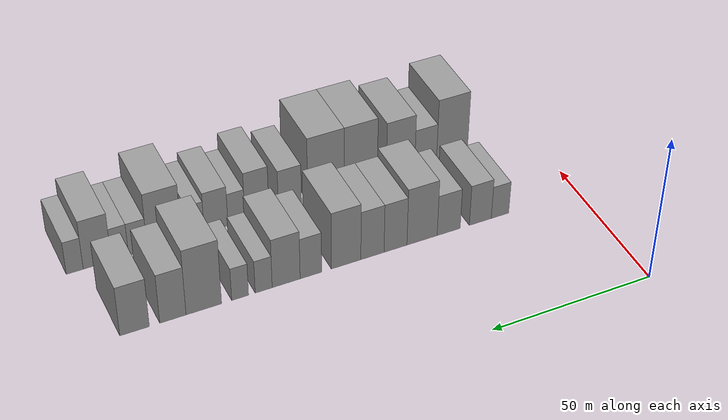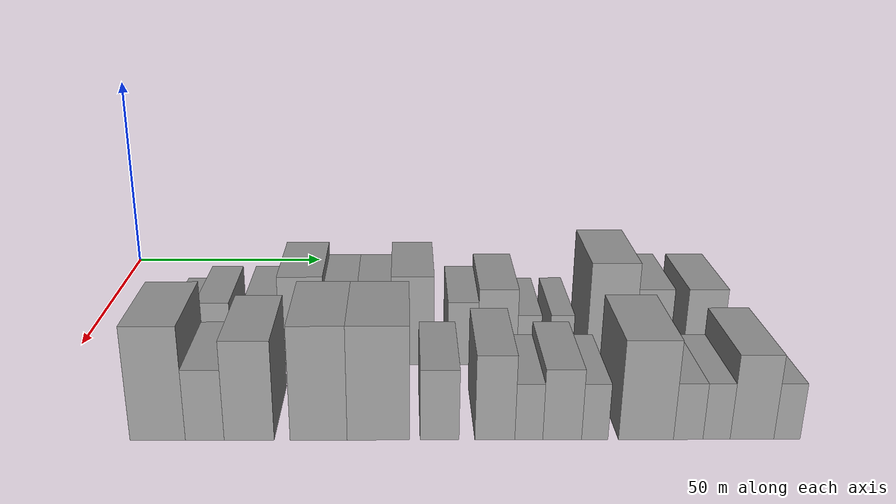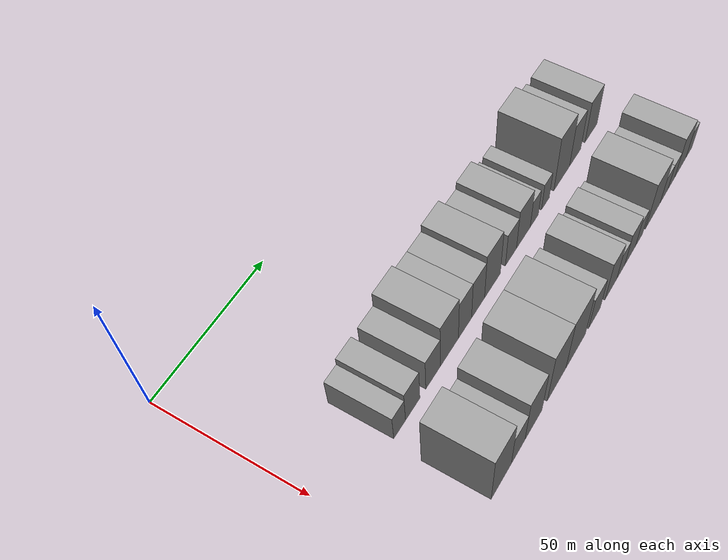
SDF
<sdf version="1.6">
 <world name="default">
  <model name="building_29">
   <static>1</static>
   <pose>50.0000 26.0019 0 0.000000 0.000000 0.000000</pose>
   <link name="link">
    <pose>0 0 6.00 0 0 0</pose>
    <collision name="collision"><geometry><box><size>20.0000 5.7797 12.0000</size></box></geometry></collision>
    <visual name="visual">
     <cast_shadows>0</cast_shadows>
     <geometry><box><size>20.0000 5.7797 12.0000</size></box></geometry>
     <material>
      <script>
       <uri>model://grey_wall/materials/scripts</uri>
       <uri>model://grey_wall/materials/textures</uri>
       <name>vrc/grey_wall</name>
      </script>
     </material>
    </visual>
   </link>
  </model>
  <model name="building_30">
   <static>1</static>
   <pose>50.0000 32.5020 0 0.000000 0.000000 0.000000</pose>
   <link name="link">
    <pose>0 0 7.50 0 0 0</pose>
    <collision name="collision"><geometry><box><size>20.0000 7.2206 15.0000</size></box></geometry></collision>
    <visual name="visual">
     <cast_shadows>0</cast_shadows>
     <geometry><box><size>20.0000 7.2206 15.0000</size></box></geometry>
     <material>
      <script>
       <uri>model://grey_wall/materials/scripts</uri>
       <uri>model://grey_wall/materials/textures</uri>
       <name>vrc/grey_wall</name>
      </script>
     </material>
    </visual>
   </link>
  </model>
  <model name="building_31">
   <static>1</static>
   <pose>50.0000 42.8494 0 0.000000 0.000000 0.000000</pose>
   <link name="link">
    <pose>0 0 7.50 0 0 0</pose>
    <collision name="collision"><geometry><box><size>20.0000 7.4743 15.0000</size></box></geometry></collision>
    <visual name="visual">
     <cast_shadows>0</cast_shadows>
     <geometry><box><size>20.0000 7.4743 15.0000</size></box></geometry>
     <material>
      <script>
       <uri>model://grey_wall/materials/scripts</uri>
       <uri>model://grey_wall/materials/textures</uri>
       <name>vrc/grey_wall</name>
      </script>
     </material>
    </visual>
   </link>
  </model>
  <model name="building_32">
   <static>1</static>
   <pose>50.0000 51.4524 0 0.000000 0.000000 0.000000</pose>
   <link name="link">
    <pose>0 0 10.50 0 0 0</pose>
    <collision name="collision"><geometry><box><size>20.0000 9.7316 21.0000</size></box></geometry></collision>
    <visual name="visual">
     <cast_shadows>0</cast_shadows>
     <geometry><box><size>20.0000 9.7316 21.0000</size></box></geometry>
     <material>
      <script>
       <uri>model://grey_wall/materials/scripts</uri>
       <uri>model://grey_wall/materials/textures</uri>
       <name>vrc/grey_wall</name>
      </script>
     </material>
    </visual>
   </link>
  </model>
  <model name="building_33">
   <static>1</static>
   <pose>50.0000 59.9531 0 0.000000 0.000000 0.000000</pose>
   <link name="link">
    <pose>0 0 9.00 0 0 0</pose>
    <collision name="collision"><geometry><box><size>20.0000 7.2698 18.0000</size></box></geometry></collision>
    <visual name="visual">
     <cast_shadows>0</cast_shadows>
     <geometry><box><size>20.0000 7.2698 18.0000</size></box></geometry>
     <material>
      <script>
       <uri>model://grey_wall/materials/scripts</uri>
       <uri>model://grey_wall/materials/textures</uri>
       <name>vrc/grey_wall</name>
      </script>
     </material>
    </visual>
   </link>
  </model>
  <model name="building_34">
   <static>1</static>
   <pose>50.0000 67.2421 0 0.000000 0.000000 0.000000</pose>
   <link name="link">
    <pose>0 0 9.00 0 0 0</pose>
    <collision name="collision"><geometry><box><size>20.0000 7.3082 18.0000</size></box></geometry></collision>
    <visual name="visual">
     <cast_shadows>0</cast_shadows>
     <geometry><box><size>20.0000 7.3082 18.0000</size></box></geometry>
     <material>
      <script>
       <uri>model://grey_wall/materials/scripts</uri>
       <uri>model://grey_wall/materials/textures</uri>
       <name>vrc/grey_wall</name>
      </script>
     </material>
    </visual>
   </link>
  </model>
  <model name="building_35">
   <static>1</static>
   <pose>50.0000 75.4865 0 0.000000 0.000000 0.000000</pose>
   <link name="link">
    <pose>0 0 10.50 0 0 0</pose>
    <collision name="collision"><geometry><box><size>20.0000 9.1805 21.0000</size></box></geometry></collision>
    <visual name="visual">
     <cast_shadows>0</cast_shadows>
     <geometry><box><size>20.0000 9.1805 21.0000</size></box></geometry>
     <material>
      <script>
       <uri>model://grey_wall/materials/scripts</uri>
       <uri>model://grey_wall/materials/textures</uri>
       <name>vrc/grey_wall</name>
      </script>
     </material>
    </visual>
   </link>
  </model>
  <model name="building_36">
   <static>1</static>
   <pose>50.0000 86.3893 0 0.000000 0.000000 0.000000</pose>
   <link name="link">
    <pose>0 0 7.50 0 0 0</pose>
    <collision name="collision"><geometry><box><size>20.0000 6.6253 15.0000</size></box></geometry></collision>
    <visual name="visual">
     <cast_shadows>0</cast_shadows>
     <geometry><box><size>20.0000 6.6253 15.0000</size></box></geometry>
     <material>
      <script>
       <uri>model://grey_wall/materials/scripts</uri>
       <uri>model://grey_wall/materials/textures</uri>
       <name>vrc/grey_wall</name>
      </script>
     </material>
    </visual>
   </link>
  </model>
  <model name="building_37">
   <static>1</static>
   <pose>50.0000 93.9520 0 0.000000 0.000000 0.000000</pose>
   <link name="link">
    <pose>0 0 9.00 0 0 0</pose>
    <collision name="collision"><geometry><box><size>20.0000 8.5001 18.0000</size></box></geometry></collision>
    <visual name="visual">
     <cast_shadows>0</cast_shadows>
     <geometry><box><size>20.0000 8.5001 18.0000</size></box></geometry>
     <material>
      <script>
       <uri>model://grey_wall/materials/scripts</uri>
       <uri>model://grey_wall/materials/textures</uri>
       <name>vrc/grey_wall</name>
      </script>
     </material>
    </visual>
   </link>
  </model>
  <model name="building_38">
   <static>1</static>
   <pose>50.0000 100.7623 0 0.000000 0.000000 0.000000</pose>
   <link name="link">
    <pose>0 0 6.00 0 0 0</pose>
    <collision name="collision"><geometry><box><size>20.0000 5.1205 12.0000</size></box></geometry></collision>
    <visual name="visual">
     <cast_shadows>0</cast_shadows>
     <geometry><box><size>20.0000 5.1205 12.0000</size></box></geometry>
     <material>
      <script>
       <uri>model://grey_wall/materials/scripts</uri>
       <uri>model://grey_wall/materials/textures</uri>
       <name>vrc/grey_wall</name>
      </script>
     </material>
    </visual>
   </link>
  </model>
  <model name="building_39">
   <static>1</static>
   <pose>50.0000 107.8391 0 0.000000 0.000000 0.000000</pose>
   <link name="link">
    <pose>0 0 6.00 0 0 0</pose>
    <collision name="collision"><geometry><box><size>20.0000 5.0329 12.0000</size></box></geometry></collision>
    <visual name="visual">
     <cast_shadows>0</cast_shadows>
     <geometry><box><size>20.0000 5.0329 12.0000</size></box></geometry>
     <material>
      <script>
       <uri>model://grey_wall/materials/scripts</uri>
       <uri>model://grey_wall/materials/textures</uri>
       <name>vrc/grey_wall</name>
      </script>
     </material>
    </visual>
   </link>
  </model>
  <model name="building_40">
   <static>1</static>
   <pose>50.0000 118.5804 0 0.000000 0.000000 0.000000</pose>
   <link name="link">
    <pose>0 0 12.00 0 0 0</pose>
    <collision name="collision"><geometry><box><size>20.0000 10.4498 24.0000</size></box></geometry></collision>
    <visual name="visual">
     <cast_shadows>0</cast_shadows>
     <geometry><box><size>20.0000 10.4498 24.0000</size></box></geometry>
     <material>
      <script>
       <uri>model://grey_wall/materials/scripts</uri>
       <uri>model://grey_wall/materials/textures</uri>
       <name>vrc/grey_wall</name>
      </script>
     </material>
    </visual>
   </link>
  </model>
  <model name="building_41">
   <static>1</static>
   <pose>50.0000 127.6384 0 0.000000 0.000000 0.000000</pose>
   <link name="link">
    <pose>0 0 9.00 0 0 0</pose>
    <collision name="collision"><geometry><box><size>20.0000 7.6661 18.0000</size></box></geometry></collision>
    <visual name="visual">
     <cast_shadows>0</cast_shadows>
     <geometry><box><size>20.0000 7.6661 18.0000</size></box></geometry>
     <material>
      <script>
       <uri>model://grey_wall/materials/scripts</uri>
       <uri>model://grey_wall/materials/textures</uri>
       <name>vrc/grey_wall</name>
      </script>
     </material>
    </visual>
   </link>
  </model>
  <model name="building_42">
   <static>1</static>
   <pose>50.0000 138.7081 0 0.000000 0.000000 0.000000</pose>
   <link name="link">
    <pose>0 0 9.00 0 0 0</pose>
    <collision name="collision"><geometry><box><size>20.0000 8.4734 18.0000</size></box></geometry></collision>
    <visual name="visual">
     <cast_shadows>0</cast_shadows>
     <geometry><box><size>20.0000 8.4734 18.0000</size></box></geometry>
     <material>
      <script>
       <uri>model://grey_wall/materials/scripts</uri>
       <uri>model://grey_wall/materials/textures</uri>
       <name>vrc/grey_wall</name>
      </script>
     </material>
    </visual>
   </link>
  </model>
  <model name="building_88">
   <static>1</static>
   <pose>79.0000 26.8853 0 0.000000 0.000000 0.000000</pose>
   <link name="link">
    <pose>0 0 12.00 0 0 0</pose>
    <collision name="collision"><geometry><box><size>20.0000 10.5078 24.0000</size></box></geometry></collision>
    <visual name="visual">
     <cast_shadows>0</cast_shadows>
     <geometry><box><size>20.0000 10.5078 24.0000</size></box></geometry>
     <material>
      <script>
       <uri>model://grey_wall/materials/scripts</uri>
       <uri>model://grey_wall/materials/textures</uri>
       <name>vrc/grey_wall</name>
      </script>
     </material>
    </visual>
   </link>
  </model>
  <model name="building_89">
   <static>1</static>
   <pose>79.0000 35.8158 0 0.000000 0.000000 0.000000</pose>
   <link name="link">
    <pose>0 0 7.50 0 0 0</pose>
    <collision name="collision"><geometry><box><size>20.0000 7.3532 15.0000</size></box></geometry></collision>
    <visual name="visual">
     <cast_shadows>0</cast_shadows>
     <geometry><box><size>20.0000 7.3532 15.0000</size></box></geometry>
     <material>
      <script>
       <uri>model://grey_wall/materials/scripts</uri>
       <uri>model://grey_wall/materials/textures</uri>
       <name>vrc/grey_wall</name>
      </script>
     </material>
    </visual>
   </link>
  </model>
  <model name="building_90">
   <static>1</static>
   <pose>79.0000 44.2381 0 0.000000 0.000000 0.000000</pose>
   <link name="link">
    <pose>0 0 10.50 0 0 0</pose>
    <collision name="collision"><geometry><box><size>20.0000 9.4914 21.0000</size></box></geometry></collision>
    <visual name="visual">
     <cast_shadows>0</cast_shadows>
     <geometry><box><size>20.0000 9.4914 21.0000</size></box></geometry>
     <material>
      <script>
       <uri>model://grey_wall/materials/scripts</uri>
       <uri>model://grey_wall/materials/textures</uri>
       <name>vrc/grey_wall</name>
      </script>
     </material>
    </visual>
   </link>
  </model>
  <model name="building_91">
   <static>1</static>
   <pose>79.0000 57.4024 0 0.000000 0.000000 0.000000</pose>
   <link name="link">
    <pose>0 0 12.00 0 0 0</pose>
    <collision name="collision"><geometry><box><size>20.0000 10.8370 24.0000</size></box></geometry></collision>
    <visual name="visual">
     <cast_shadows>0</cast_shadows>
     <geometry><box><size>20.0000 10.8370 24.0000</size></box></geometry>
     <material>
      <script>
       <uri>model://grey_wall/materials/scripts</uri>
       <uri>model://grey_wall/materials/textures</uri>
       <name>vrc/grey_wall</name>
      </script>
     </material>
    </visual>
   </link>
  </model>
  <model name="building_92">
   <static>1</static>
   <pose>79.0000 68.7419 0 0.000000 0.000000 0.000000</pose>
   <link name="link">
    <pose>0 0 12.00 0 0 0</pose>
    <collision name="collision"><geometry><box><size>20.0000 11.8421 24.0000</size></box></geometry></collision>
    <visual name="visual">
     <cast_shadows>0</cast_shadows>
     <geometry><box><size>20.0000 11.8421 24.0000</size></box></geometry>
     <material>
      <script>
       <uri>model://grey_wall/materials/scripts</uri>
       <uri>model://grey_wall/materials/textures</uri>
       <name>vrc/grey_wall</name>
      </script>
     </material>
    </visual>
   </link>
  </model>
  <model name="building_93">
   <static>1</static>
   <pose>79.0000 80.3644 0 0.000000 0.000000 0.000000</pose>
   <link name="link">
    <pose>0 0 7.50 0 0 0</pose>
    <collision name="collision"><geometry><box><size>20.0000 7.4029 15.0000</size></box></geometry></collision>
    <visual name="visual">
     <cast_shadows>0</cast_shadows>
     <geometry><box><size>20.0000 7.4029 15.0000</size></box></geometry>
     <material>
      <script>
       <uri>model://grey_wall/materials/scripts</uri>
       <uri>model://grey_wall/materials/textures</uri>
       <name>vrc/grey_wall</name>
      </script>
     </material>
    </visual>
   </link>
  </model>
  <model name="building_94">
   <static>1</static>
   <pose>79.0000 90.8599 0 0.000000 0.000000 0.000000</pose>
   <link name="link">
    <pose>0 0 9.00 0 0 0</pose>
    <collision name="collision"><geometry><box><size>20.0000 7.5880 18.0000</size></box></geometry></collision>
    <visual name="visual">
     <cast_shadows>0</cast_shadows>
     <geometry><box><size>20.0000 7.5880 18.0000</size></box></geometry>
     <material>
      <script>
       <uri>model://grey_wall/materials/scripts</uri>
       <uri>model://grey_wall/materials/textures</uri>
       <name>vrc/grey_wall</name>
      </script>
     </material>
    </visual>
   </link>
  </model>
  <model name="building_95">
   <static>1</static>
   <pose>79.0000 97.3081 0 0.000000 0.000000 0.000000</pose>
   <link name="link">
    <pose>0 0 6.00 0 0 0</pose>
    <collision name="collision"><geometry><box><size>20.0000 5.3083 12.0000</size></box></geometry></collision>
    <visual name="visual">
     <cast_shadows>0</cast_shadows>
     <geometry><box><size>20.0000 5.3083 12.0000</size></box></geometry>
     <material>
      <script>
       <uri>model://grey_wall/materials/scripts</uri>
       <uri>model://grey_wall/materials/textures</uri>
       <name>vrc/grey_wall</name>
      </script>
     </material>
    </visual>
   </link>
  </model>
  <model name="building_96">
   <static>1</static>
   <pose>79.0000 103.6469 0 0.000000 0.000000 0.000000</pose>
   <link name="link">
    <pose>0 0 7.50 0 0 0</pose>
    <collision name="collision"><geometry><box><size>20.0000 7.3695 15.0000</size></box></geometry></collision>
    <visual name="visual">
     <cast_shadows>0</cast_shadows>
     <geometry><box><size>20.0000 7.3695 15.0000</size></box></geometry>
     <material>
      <script>
       <uri>model://grey_wall/materials/scripts</uri>
       <uri>model://grey_wall/materials/textures</uri>
       <name>vrc/grey_wall</name>
      </script>
     </material>
    </visual>
   </link>
  </model>
  <model name="building_97">
   <static>1</static>
   <pose>79.0000 109.8429 0 0.000000 0.000000 0.000000</pose>
   <link name="link">
    <pose>0 0 6.00 0 0 0</pose>
    <collision name="collision"><geometry><box><size>20.0000 5.0224 12.0000</size></box></geometry></collision>
    <visual name="visual">
     <cast_shadows>0</cast_shadows>
     <geometry><box><size>20.0000 5.0224 12.0000</size></box></geometry>
     <material>
      <script>
       <uri>model://grey_wall/materials/scripts</uri>
       <uri>model://grey_wall/materials/textures</uri>
       <name>vrc/grey_wall</name>
      </script>
     </material>
    </visual>
   </link>
  </model>
  <model name="building_98">
   <static>1</static>
   <pose>79.0000 119.5739 0 0.000000 0.000000 0.000000</pose>
   <link name="link">
    <pose>0 0 10.50 0 0 0</pose>
    <collision name="collision"><geometry><box><size>20.0000 10.4396 21.0000</size></box></geometry></collision>
    <visual name="visual">
     <cast_shadows>0</cast_shadows>
     <geometry><box><size>20.0000 10.4396 21.0000</size></box></geometry>
     <material>
      <script>
       <uri>model://grey_wall/materials/scripts</uri>
       <uri>model://grey_wall/materials/textures</uri>
       <name>vrc/grey_wall</name>
      </script>
     </material>
    </visual>
   </link>
  </model>
  <model name="building_99">
   <static>1</static>
   <pose>79.0000 127.5968 0 0.000000 0.000000 0.000000</pose>
   <link name="link">
    <pose>0 0 6.00 0 0 0</pose>
    <collision name="collision"><geometry><box><size>20.0000 5.6062 12.0000</size></box></geometry></collision>
    <visual name="visual">
     <cast_shadows>0</cast_shadows>
     <geometry><box><size>20.0000 5.6062 12.0000</size></box></geometry>
     <material>
      <script>
       <uri>model://grey_wall/materials/scripts</uri>
       <uri>model://grey_wall/materials/textures</uri>
       <name>vrc/grey_wall</name>
      </script>
     </material>
    </visual>
   </link>
  </model>
  <model name="building_100">
   <static>1</static>
   <pose>79.0000 132.9849 0 0.000000 0.000000 0.000000</pose>
   <link name="link">
    <pose>0 0 6.00 0 0 0</pose>
    <collision name="collision"><geometry><box><size>20.0000 5.1700 12.0000</size></box></geometry></collision>
    <visual name="visual">
     <cast_shadows>0</cast_shadows>
     <geometry><box><size>20.0000 5.1700 12.0000</size></box></geometry>
     <material>
      <script>
       <uri>model://grey_wall/materials/scripts</uri>
       <uri>model://grey_wall/materials/textures</uri>
       <name>vrc/grey_wall</name>
      </script>
     </material>
    </visual>
   </link>
  </model>
  <model name="building_101">
   <static>1</static>
   <pose>79.0000 139.7289 0 0.000000 0.000000 0.000000</pose>
   <link name="link">
    <pose>0 0 9.00 0 0 0</pose>
    <collision name="collision"><geometry><box><size>20.0000 8.3180 18.0000</size></box></geometry></collision>
    <visual name="visual">
     <cast_shadows>0</cast_shadows>
     <geometry><box><size>20.0000 8.3180 18.0000</size></box></geometry>
     <material>
      <script>
       <uri>model://grey_wall/materials/scripts</uri>
       <uri>model://grey_wall/materials/textures</uri>
       <name>vrc/grey_wall</name>
      </script>
     </material>
    </visual>
   </link>
  </model>
  <model name="building_102">
   <static>1</static>
   <pose>79.0000 146.3904 0 0.000000 0.000000 0.000000</pose>
   <link name="link">
    <pose>0 0 6.00 0 0 0</pose>
    <collision name="collision"><geometry><box><size>20.0000 5.0050 12.0000</size></box></geometry></collision>
    <visual name="visual">
     <cast_shadows>0</cast_shadows>
     <geometry><box><size>20.0000 5.0050 12.0000</size></box></geometry>
     <material>
      <script>
       <uri>model://grey_wall/materials/scripts</uri>
       <uri>model://grey_wall/materials/textures</uri>
       <name>vrc/grey_wall</name>
      </script>
     </material>
    </visual>
   </link>
  </model>
 </world>
</sdf>
